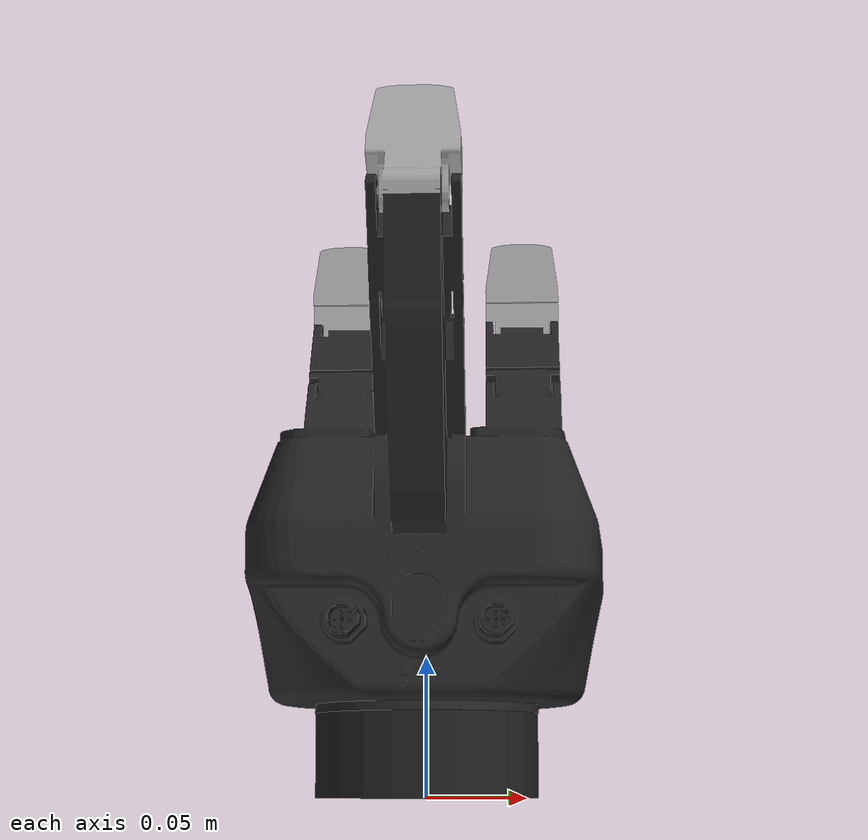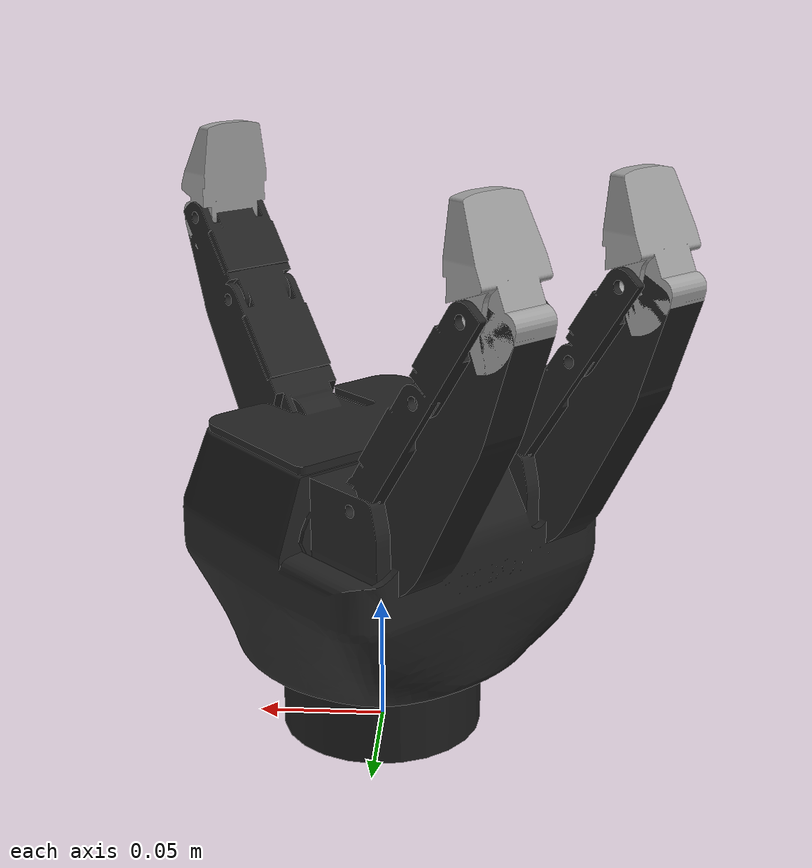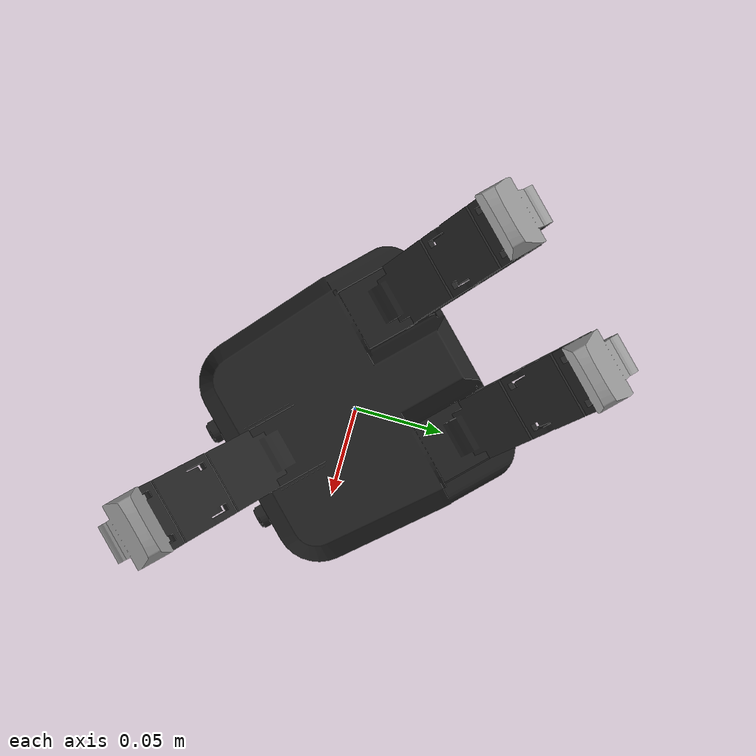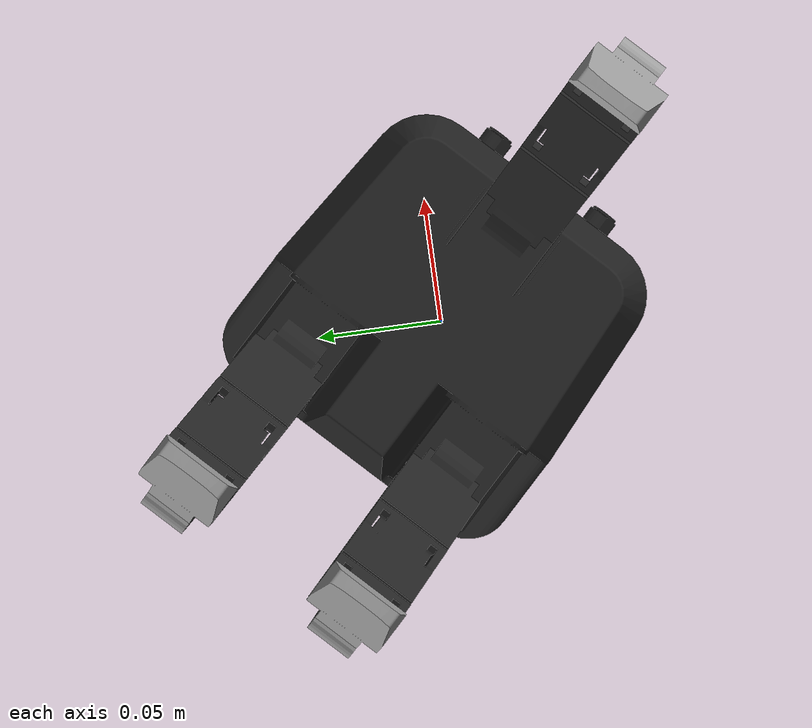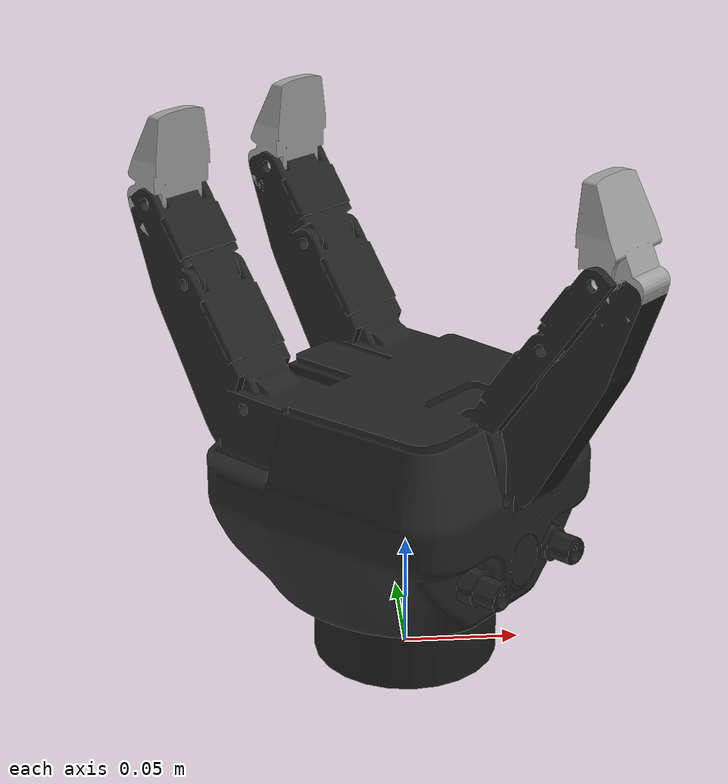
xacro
<?xml version="1.0"?>
<robot xmlns:xacro="http://www.ros.org/wiki/xacro" name="s_model_open">
  <xacro:include filename="$(find robotiq_3f_gripper_visualization)/urdf/robotiq_3f.urdf.xacro" />
  <xacro:robotiq_3f prefix="" parent="base_link">
    <origin xyz="0 0 0" rpy="0 0 0" />
  </xacro:robotiq_3f>
  <link name="base_link" />
</robot>

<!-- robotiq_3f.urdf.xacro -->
<robot xmlns:xacro="http://www.ros.org/wiki/xacro" name="s_model_open">

    <xacro:macro name="robotiq_3f" params="parent prefix *origin">

        <!-- mount the Gripper to the robot -->

        <link name="${prefix}s_model_base_link" />
        <joint name="${prefix}s_model_base_joint" type="fixed">
            <parent link="${parent}" />
            <child link="${prefix}s_model_base_link" />
            <xacro:insert_block name="origin" />
        </joint>

        <joint name="${prefix}s_model_adapter" type="fixed" >
            <origin xyz="0.0 0.0 0.015" rpy="0.0 0.0 0.0"/>
	          <parent link="${prefix}s_model_base_link" />
            <child link="${prefix}s_model_adapter_link" />
        </joint>

        <joint name="${prefix}_s_model_fix" type="fixed" >
            <origin xyz="0.0 0.0 0.018" rpy="1.5708 0.0 -0.7854"/>
            <parent link="${prefix}s_model_adapter_link" />
            <child link="${prefix}s_model_link" />
        </joint>

        <link name="${prefix}s_model_adapter_link">

        <visual>
         <origin xyz="0 0 0" rpy="0 0 0" />
         <geometry>
          <cylinder radius="0.04" length="0.03"/>
         </geometry>
         <material name="black"/>
        </visual>

         <collision>
         <origin xyz="0 0 0" rpy="0 0 0"/>
         <geometry>
         <cylinder radius="0.04" length="0.03"/>
         </geometry>
         <material name="red"/>
        </collision>
        </link>

        <link name="${prefix}s_model_link">
            <visual>
                <origin xyz="0 0 0" rpy="0 0 0" />
                <geometry>
                    <mesh filename="package://robotiq_3f_gripper_visualization/meshes/s_model_open.dae" />
                </geometry>
            </visual>

            <collision>
                <origin xyz="0 0 0" rpy="0 0 0" />
                <geometry>
                    <mesh filename="package://robotiq_3f_gripper_visualization/meshes/s_model_open_collision.stl" />
                </geometry>
            </collision>
        </link>

    </xacro:macro>
</robot>
